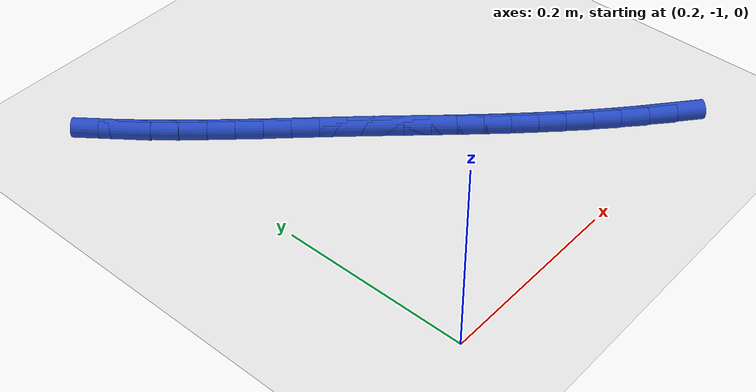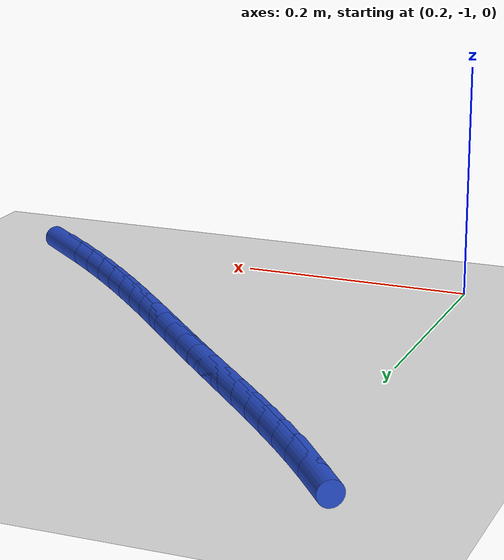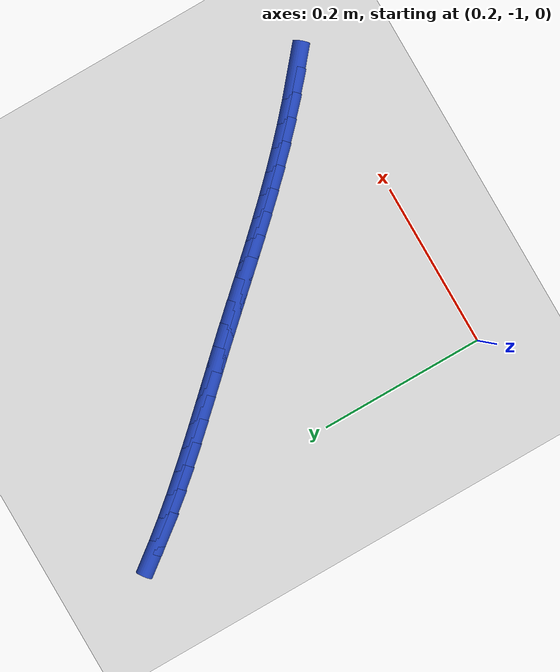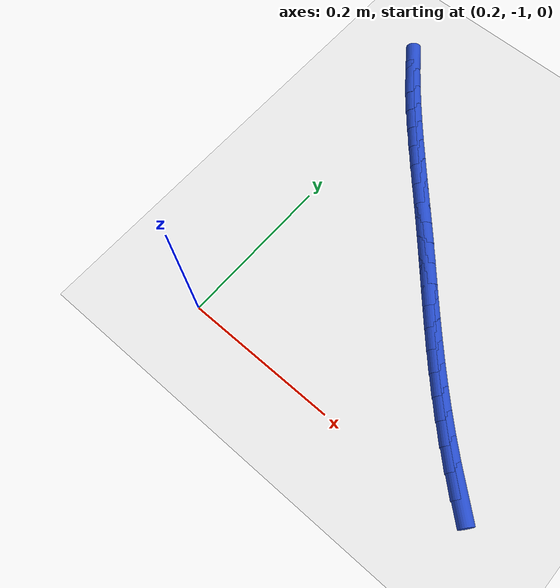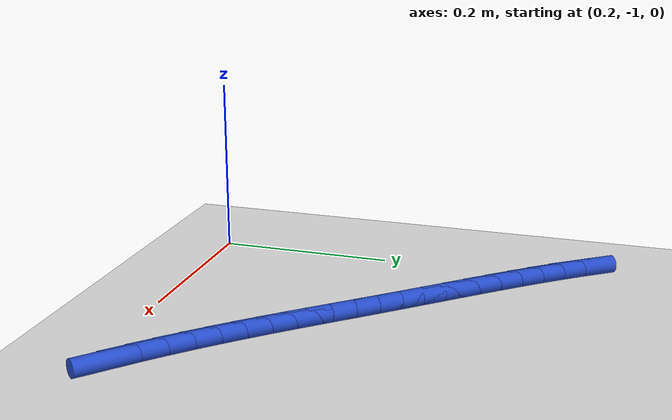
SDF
<sdf version="1.6">
 <world name="default">
  <model name="ground_plane">
   <static>1</static>
   <link name="link">
    <collision name="collision">
     <geometry><plane><normal>0 0 1</normal><size>100 100</size></plane></geometry>
     <surface><friction><ode><mu>100</mu><mu2>50</mu2></ode></friction></surface>
    </collision>
    <visual name="visual">
     <cast_shadows>0</cast_shadows>
     <geometry><plane><normal>0 0 1</normal><size>100 100</size></plane></geometry>
     <material>
      <script><uri>file://media/materials/scripts/gazebo.material</uri><name>Gazebo/WhiteGlow</name></script>
     </material>
    </visual>
   </link>
  </model>
  <model name="line">
   <link name="link_208">
    <pose>0.5651487665510339 -0.9704538817790427 0.01 0 1.57 -0.7034700113993178</pose>
    <collision name="collision">
     <geometry><cylinder><radius>0.01</radius><length>0.08</length></cylinder></geometry>
    </collision>
    <visual name="visual">
     <material>
      <script><name>Gazebo/Blue</name><uri>file://media/materials/scripts/gazebo.material</uri></script>
     </material>
     <geometry><cylinder><radius>0.01</radius><length>0.08</length></cylinder></geometry>
    </visual>
   </link>
   <link name="link_209">
    <pose>0.5426470144153351 -0.9513670494969375 0.01 0 1.57 -0.7295711458072727</pose>
    <collision name="collision">
     <geometry><cylinder><radius>0.01</radius><length>0.08</length></cylinder></geometry>
    </collision>
    <visual name="visual">
     <material>
      <script><name>Gazebo/Blue</name><uri>file://media/materials/scripts/gazebo.material</uri></script>
     </material>
     <geometry><cylinder><radius>0.01</radius><length>0.08</length></cylinder></geometry>
    </visual>
   </link>
   <link name="link_210">
    <pose>0.5210064079018787 -0.9320171983130346 0.01 0 1.57 -0.752553948951444</pose>
    <collision name="collision">
     <geometry><cylinder><radius>0.01</radius><length>0.08</length></cylinder></geometry>
    </collision>
    <visual name="visual">
     <material>
      <script><name>Gazebo/Blue</name><uri>file://media/materials/scripts/gazebo.material</uri></script>
     </material>
     <geometry><cylinder><radius>0.01</radius><length>0.08</length></cylinder></geometry>
    </visual>
   </link>
   <link name="link_211">
    <pose>0.5001914761645743 -0.9125265479771382 0.01 0 1.57 -0.773084876174257</pose>
    <collision name="collision">
     <geometry><cylinder><radius>0.01</radius><length>0.08</length></cylinder></geometry>
    </collision>
    <visual name="visual">
     <material>
      <script><name>Gazebo/Blue</name><uri>file://media/materials/scripts/gazebo.material</uri></script>
     </material>
     <geometry><cylinder><radius>0.01</radius><length>0.08</length></cylinder></geometry>
    </visual>
   </link>
   <link name="link_212">
    <pose>0.4800885065339966 -0.8929126482835176 0.01 0 1.57 -0.7908883824961744</pose>
    <collision name="collision">
     <geometry><cylinder><radius>0.01</radius><length>0.08</length></cylinder></geometry>
    </collision>
    <visual name="visual">
     <material>
      <script><name>Gazebo/Blue</name><uri>file://media/materials/scripts/gazebo.material</uri></script>
     </material>
     <geometry><cylinder><radius>0.01</radius><length>0.08</length></cylinder></geometry>
    </visual>
   </link>
   <link name="link_213">
    <pose>0.46058233004795884 -0.8731911008343869 0.01 0 1.57 -0.8057115112524438</pose>
    <collision name="collision">
     <geometry><cylinder><radius>0.01</radius><length>0.08</length></cylinder></geometry>
    </collision>
    <visual name="visual">
     <material>
      <script><name>Gazebo/Blue</name><uri>file://media/materials/scripts/gazebo.material</uri></script>
     </material>
     <geometry><cylinder><radius>0.01</radius><length>0.08</length></cylinder></geometry>
    </visual>
   </link>
   <link name="link_214">
    <pose>0.4415577777442734 -0.8533775072319589 0.01 0 1.57 -0.8173458025332082</pose>
    <collision name="collision">
     <geometry><cylinder><radius>0.01</radius><length>0.08</length></cylinder></geometry>
    </collision>
    <visual name="visual">
     <material>
      <script><name>Gazebo/Blue</name><uri>file://media/materials/scripts/gazebo.material</uri></script>
     </material>
     <geometry><cylinder><radius>0.01</radius><length>0.08</length></cylinder></geometry>
    </visual>
   </link>
   <link name="link_215">
    <pose>0.4228996806607531 -0.8334874690784474 0.01 0 1.57 -0.8256309561445248</pose>
    <collision name="collision">
     <geometry><cylinder><radius>0.01</radius><length>0.08</length></cylinder></geometry>
    </collision>
    <visual name="visual">
     <material>
      <script><name>Gazebo/Blue</name><uri>file://media/materials/scripts/gazebo.material</uri></script>
     </material>
     <geometry><cylinder><radius>0.01</radius><length>0.08</length></cylinder></geometry>
    </visual>
   </link>
   <link name="link_216">
    <pose>0.40449286983521077 -0.813536587976066 0.01 0 1.57 -0.8304570741323204</pose>
    <collision name="collision">
     <geometry><cylinder><radius>0.01</radius><length>0.08</length></cylinder></geometry>
    </collision>
    <visual name="visual">
     <material>
      <script><name>Gazebo/Blue</name><uri>file://media/materials/scripts/gazebo.material</uri></script>
     </material>
     <geometry><cylinder><radius>0.01</radius><length>0.08</length></cylinder></geometry>
    </visual>
   </link>
   <link name="link_217">
    <pose>0.38622217630545913 -0.793540465527028 0.01 0 1.57 -0.8317657793973515</pose>
    <collision name="collision">
     <geometry><cylinder><radius>0.01</radius><length>0.08</length></cylinder></geometry>
    </collision>
    <visual name="visual">
     <material>
      <script><name>Gazebo/Blue</name><uri>file://media/materials/scripts/gazebo.material</uri></script>
     </material>
     <geometry><cylinder><radius>0.01</radius><length>0.08</length></cylinder></geometry>
    </visual>
   </link>
   <link name="link_218">
    <pose>0.3679724311093111 -0.7735147033335471 0.01 0 1.57 -0.8295504852886213</pose>
    <collision name="collision">
     <geometry><cylinder><radius>0.01</radius><length>0.08</length></cylinder></geometry>
    </collision>
    <visual name="visual">
     <material>
      <script><name>Gazebo/Blue</name><uri>file://media/materials/scripts/gazebo.material</uri></script>
     </material>
     <geometry><cylinder><radius>0.01</radius><length>0.08</length></cylinder></geometry>
    </visual>
   </link>
   <link name="link_219">
    <pose>0.3496284652845792 -0.7534749029978369 0.01 0 1.57 -0.8241015451410026</pose>
    <collision name="collision">
     <geometry><cylinder><radius>0.01</radius><length>0.08</length></cylinder></geometry>
    </collision>
    <visual name="visual">
     <material>
      <script><name>Gazebo/Blue</name><uri>file://media/materials/scripts/gazebo.material</uri></script>
     </material>
     <geometry><cylinder><radius>0.01</radius><length>0.08</length></cylinder></geometry>
    </visual>
   </link>
   <link name="link_220">
    <pose>0.33108226084310877 -0.7334345210292227 0.01 0 1.57 -0.8193601832958614</pose>
    <collision name="collision">
     <geometry><cylinder><radius>0.01</radius><length>0.08</length></cylinder></geometry>
    </collision>
    <visual name="visual">
     <material>
      <script><name>Gazebo/Blue</name><uri>file://media/materials/scripts/gazebo.material</uri></script>
     </material>
     <geometry><cylinder><radius>0.01</radius><length>0.08</length></cylinder></geometry>
    </visual>
   </link>
   <link name="link_221">
    <pose>0.31233914399040946 -0.713373013838221 0.01 0 1.57 -0.818389117895041</pose>
    <collision name="collision">
     <geometry><cylinder><radius>0.01</radius><length>0.08</length></cylinder></geometry>
    </collision>
    <visual name="visual">
     <material>
      <script><name>Gazebo/Blue</name><uri>file://media/materials/scripts/gazebo.material</uri></script>
     </material>
     <geometry><cylinder><radius>0.01</radius><length>0.08</length></cylinder></geometry>
    </visual>
   </link>
   <link name="link_222">
    <pose>0.29349505665098075 -0.6932426556454195 0.01 0 1.57 -0.821222166261339</pose>
    <collision name="collision">
     <geometry><cylinder><radius>0.01</radius><length>0.08</length></cylinder></geometry>
    </collision>
    <visual name="visual">
     <material>
      <script><name>Gazebo/Blue</name><uri>file://media/materials/scripts/gazebo.material</uri></script>
     </material>
     <geometry><cylinder><radius>0.01</radius><length>0.08</length></cylinder></geometry>
    </visual>
   </link>
   <link name="link_223">
    <pose>0.2746484745364999 -0.6729949606058785 0.01 0 1.57 -0.8278328801482142</pose>
    <collision name="collision">
     <geometry><cylinder><radius>0.01</radius><length>0.08</length></cylinder></geometry>
    </collision>
    <visual name="visual">
     <material>
      <script><name>Gazebo/Blue</name><uri>file://media/materials/scripts/gazebo.material</uri></script>
     </material>
     <geometry><cylinder><radius>0.01</radius><length>0.08</length></cylinder></geometry>
    </visual>
   </link>
   <link name="link_224">
    <pose>0.255897873358644 -0.6525814428746579 0.01 0 1.57 -0.8382196258437139</pose>
    <collision name="collision">
     <geometry><cylinder><radius>0.01</radius><length>0.08</length></cylinder></geometry>
    </collision>
    <visual name="visual">
     <material>
      <script><name>Gazebo/Blue</name><uri>file://media/materials/scripts/gazebo.material</uri></script>
     </material>
     <geometry><cylinder><radius>0.01</radius><length>0.08</length></cylinder></geometry>
    </visual>
   </link>
   <link name="link_225">
    <pose>0.2373417288290902 -0.6319536166068177 0.01 0 1.57 -0.8524024674351088</pose>
    <collision name="collision">
     <geometry><cylinder><radius>0.01</radius><length>0.08</length></cylinder></geometry>
    </collision>
    <visual name="visual">
     <material>
      <script><name>Gazebo/Blue</name><uri>file://media/materials/scripts/gazebo.material</uri></script>
     </material>
     <geometry><cylinder><radius>0.01</radius><length>0.08</length></cylinder></geometry>
    </visual>
   </link>
   <link name="link_226">
    <pose>0.21907851665951592 -0.6110629959574185 0.01 0 1.57 -0.8704187429362135</pose>
    <collision name="collision">
     <geometry><cylinder><radius>0.01</radius><length>0.08</length></cylinder></geometry>
    </collision>
    <visual name="visual">
     <material>
      <script><name>Gazebo/Blue</name><uri>file://media/materials/scripts/gazebo.material</uri></script>
     </material>
     <geometry><cylinder><radius>0.01</radius><length>0.08</length></cylinder></geometry>
    </visual>
   </link>
   <link name="link_227">
    <pose>0.20120671256159814 -0.5898610950815197 0.01 0 1.57 -0.8923171101337106</pose>
    <collision name="collision">
     <geometry><cylinder><radius>0.01</radius><length>0.08</length></cylinder></geometry>
    </collision>
    <visual name="visual">
     <material>
      <script><name>Gazebo/Blue</name><uri>file://media/materials/scripts/gazebo.material</uri></script>
     </material>
     <geometry><cylinder><radius>0.01</radius><length>0.08</length></cylinder></geometry>
    </visual>
   </link>
   <link name="link_228">
    <pose>0.18382479224701423 -0.5682994281341819 0.01 0 1.57 -0.9181497807081742</pose>
    <collision name="collision">
     <geometry><cylinder><radius>0.01</radius><length>0.08</length></cylinder></geometry>
    </collision>
    <visual name="visual">
     <material>
      <script><name>Gazebo/Blue</name><uri>file://media/materials/scripts/gazebo.material</uri></script>
     </material>
     <geometry><cylinder><radius>0.01</radius><length>0.08</length></cylinder></geometry>
    </visual>
   </link>
  </model>
 </world>
</sdf>
